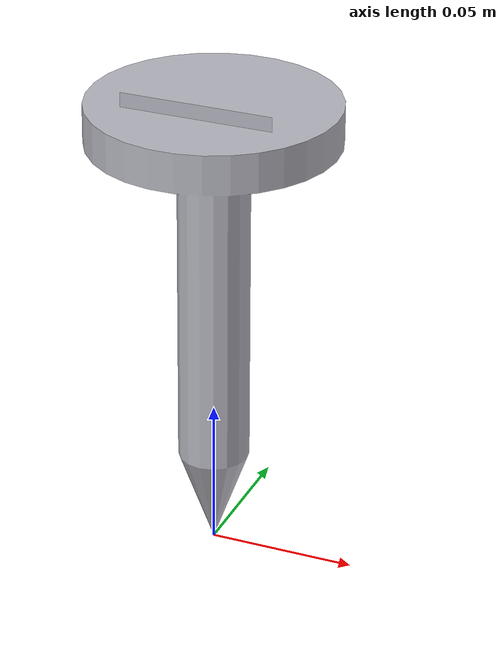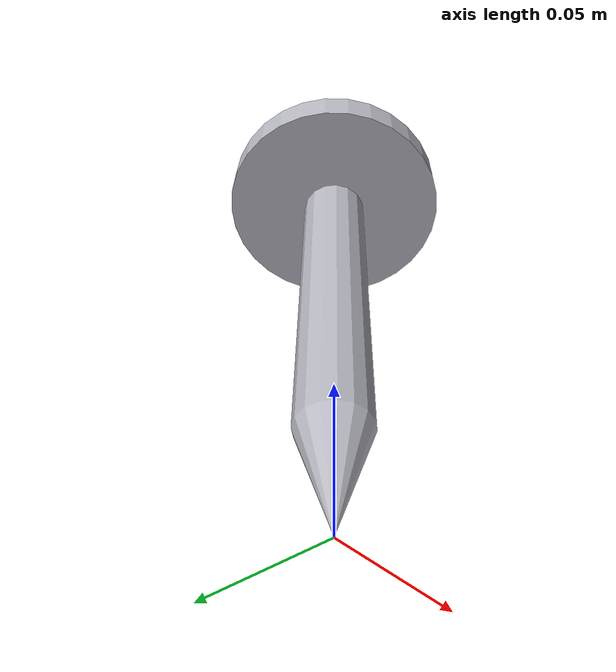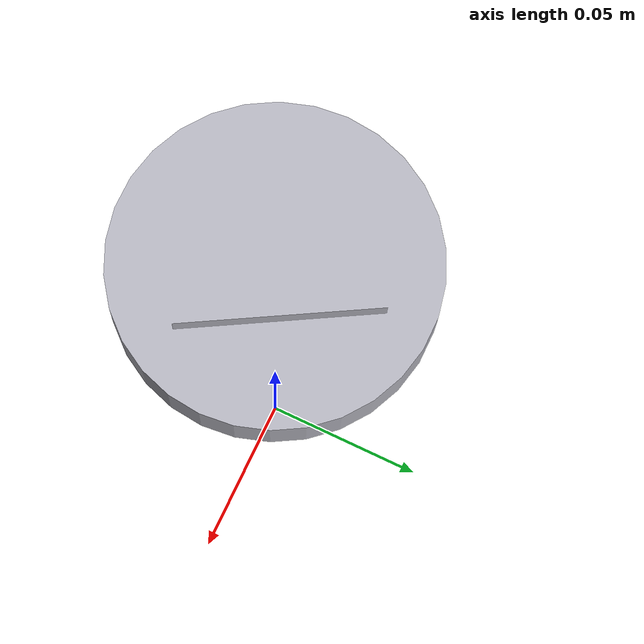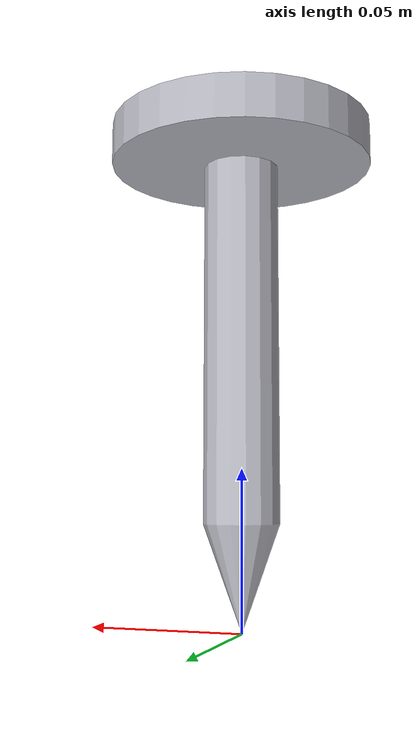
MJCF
<?xml version="1.0" encoding="utf-8"?>
<mujoco model="nail_new">
  <asset>
    <mesh file="nail_new.stl" name="nail_new_mesh" scale="1000 1000 1000"/>
    <material name="nail_metal" specular="0.9" shininess="0.4" rgba="0.72 0.72 0.76 1"/>
  </asset>
  <worldbody>
    <body>
      <body name="object">
        <!-- group=1 视觉 geom：渲染纹理，无碰撞 -->
        <geom type="mesh" mesh="nail_new_mesh"
              conaffinity="0" contype="0"
              group="1" material="nail_metal"/>
        <!-- group=0 碰撞 geom：参与物理，透明 -->
        <geom type="mesh" mesh="nail_new_mesh"
              solimp="0.998 0.998 0.001" solref="0.001 1"
              friction="1.5 0.005 0.0001"
              contype="1" conaffinity="1"
              group="0" rgba="0.72 0.72 0.76 0.0"/>
      </body>
      <site rgba="0 0 0 0" size="0.005" pos="0 0 0"       name="bottom_site"/>
      <site rgba="0 0 0 0" size="0.005" pos="0 0 0.166"   name="top_site"/>
      <site rgba="0 0 0 0" size="0.005" pos="0.042 0 0.083" name="horizontal_radius_site"/>
    </body>
  </worldbody>
</mujoco>
